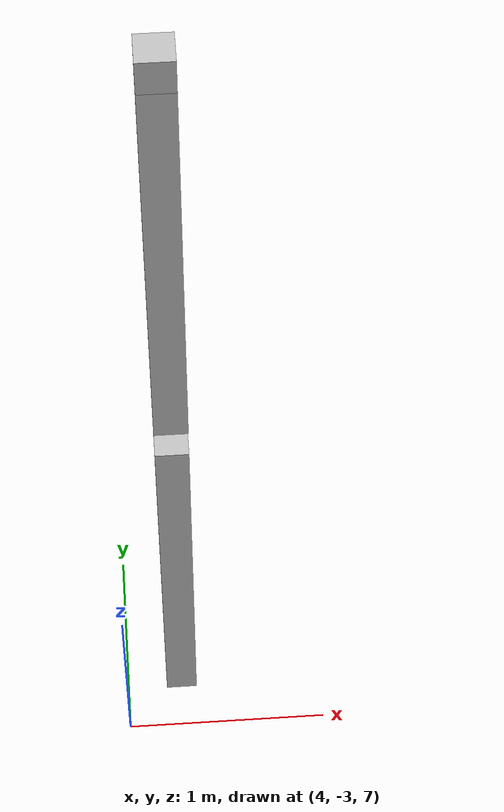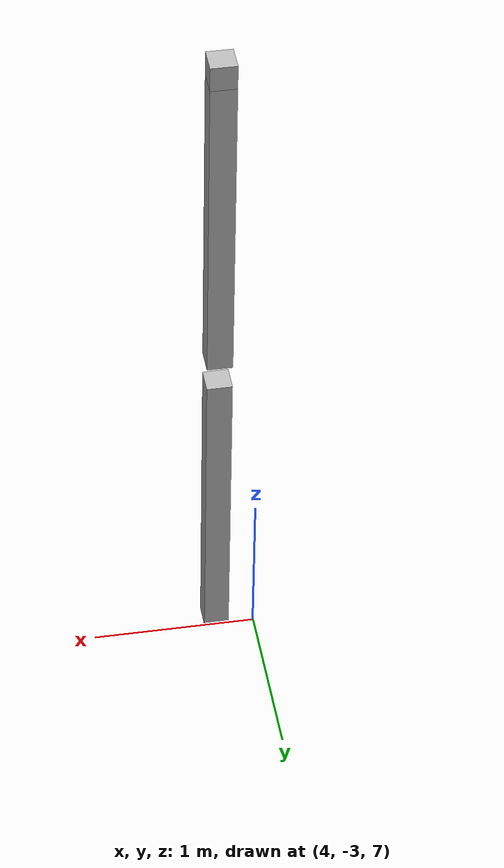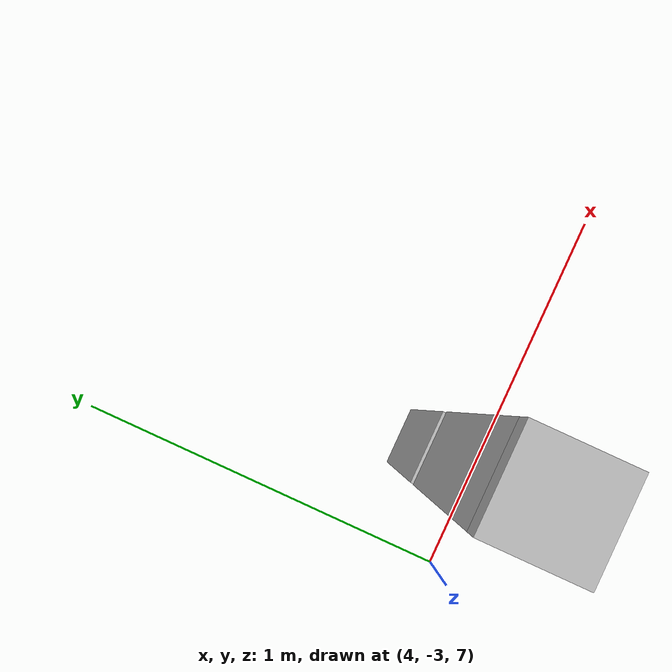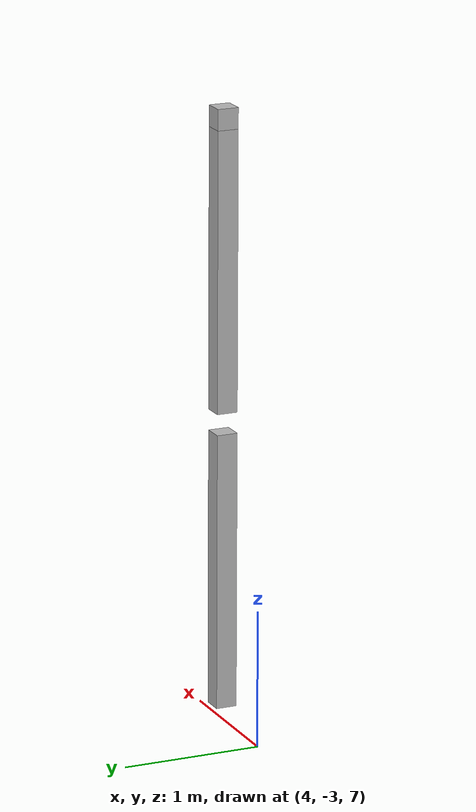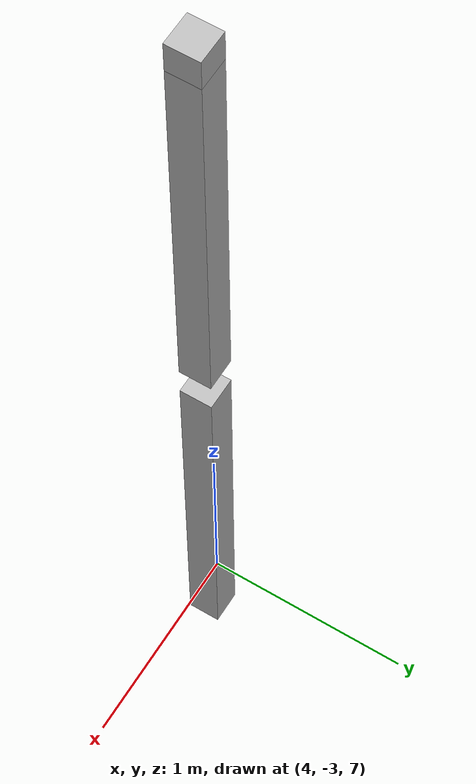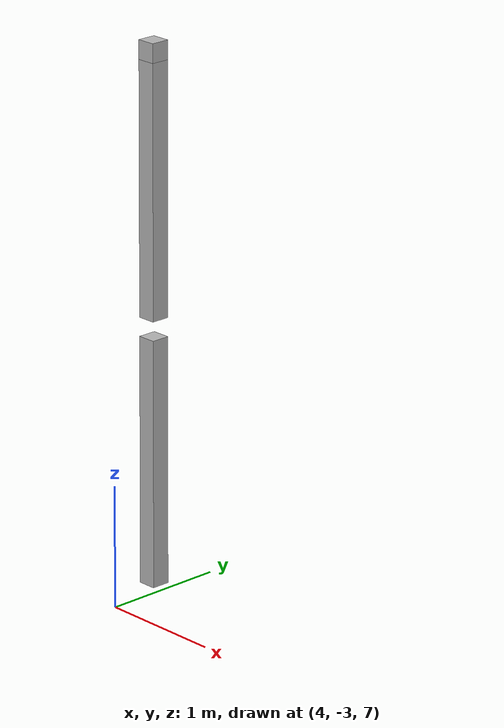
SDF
<sdf version="1.7">
 <world name="default">
  <model name="orthogonal_747_2.000.15_TS">
   <static>1</static>
   <link name="z_link_5_1_5">
    <inertial>
     <mass>1</mass>
     <inertia>
      <ixx>0.166667</ixx>
      <ixy>0</ixy>
      <ixz>0</ixz>
      <iyy>0.166667</iyy>
      <iyz>0</iyz>
      <izz>0.166667</izz>
     </inertia>
    </inertial>
    <pose>10.75 2.15 10.75 0 -0 0</pose>
    <visual name="visual_0">
     <laser_retro>4705</laser_retro>
     <geometry><box><size>0.15 1e-06 2</size></box></geometry>
     <material>
      <script><name>Gazebo/Grey</name><uri>file://media/materials/scripts/gazebo.material</uri></script>
      <shader type="pixel"><normal_map>__default__</normal_map></shader>
      <ambient>0.678 0.498 0.659 1</ambient>
      <diffuse>0.7 0.7 0.7 1</diffuse>
      <specular>0.01 0.01 0.01 1</specular>
      <emissive>0 0 0 1</emissive>
     </material>
     <pose>0 -0.075 0 0 -0 0</pose>
     <transparency>1</transparency>
    </visual>
    <visual name="visual_1">
     <laser_retro>4706</laser_retro>
     <geometry><box><size>0.15 1e-06 2</size></box></geometry>
     <material>
      <script><name>Gazebo/Grey</name><uri>file://media/materials/scripts/gazebo.material</uri></script>
      <shader type="pixel"><normal_map>__default__</normal_map></shader>
      <ambient>0.447 0.624 0.812 1</ambient>
      <diffuse>0.7 0.7 0.7 1</diffuse>
      <specular>0.01 0.01 0.01 1</specular>
      <emissive>0 0 0 1</emissive>
     </material>
     <pose>0 0.075 0 0 -0 0</pose>
     <transparency>1</transparency>
    </visual>
    <visual name="visual_2">
     <laser_retro>4707</laser_retro>
     <geometry><box><size>0.15 0.15 1e-06</size></box></geometry>
     <material>
      <script><name>Gazebo/Grey</name><uri>file://media/materials/scripts/gazebo.material</uri></script>
      <shader type="pixel"><normal_map>__default__</normal_map></shader>
      <ambient>0.988 0.686 0.243 1</ambient>
      <diffuse>0.7 0.7 0.7 1</diffuse>
      <specular>0.01 0.01 0.01 1</specular>
      <emissive>0 0 0 1</emissive>
     </material>
     <pose>0 0 -1 0 -0 0</pose>
     <transparency>1</transparency>
    </visual>
    <visual name="visual_3">
     <laser_retro>4708</laser_retro>
     <geometry><box><size>1e-06 0.15 2</size></box></geometry>
     <material>
      <script><name>Gazebo/Grey</name><uri>file://media/materials/scripts/gazebo.material</uri></script>
      <shader type="pixel"><normal_map>__default__</normal_map></shader>
      <ambient>0.988 0.914 0.31 1</ambient>
      <diffuse>0.7 0.7 0.7 1</diffuse>
      <specular>0.01 0.01 0.01 1</specular>
      <emissive>0 0 0 1</emissive>
     </material>
     <pose>0.075 0 0 0 -0 0</pose>
     <transparency>1</transparency>
    </visual>
    <visual name="visual_4">
     <laser_retro>4709</laser_retro>
     <geometry><box><size>0.15 0.15 1e-06</size></box></geometry>
     <material>
      <script><name>Gazebo/Grey</name><uri>file://media/materials/scripts/gazebo.material</uri></script>
      <shader type="pixel"><normal_map>__default__</normal_map></shader>
      <ambient>0.937 0.161 0.161 1</ambient>
      <diffuse>0.7 0.7 0.7 1</diffuse>
      <specular>0.01 0.01 0.01 1</specular>
      <emissive>0 0 0 1</emissive>
     </material>
     <pose>0 0 1 0 -0 0</pose>
     <transparency>1</transparency>
    </visual>
    <visual name="visual_5">
     <laser_retro>4710</laser_retro>
     <geometry><box><size>1e-06 0.15 2</size></box></geometry>
     <material>
      <script><name>Gazebo/Grey</name><uri>file://media/materials/scripts/gazebo.material</uri></script>
      <shader type="pixel"><normal_map>__default__</normal_map></shader>
      <ambient>0.541 0.886 0.204 1</ambient>
      <diffuse>0.7 0.7 0.7 1</diffuse>
      <specular>0.01 0.01 0.01 1</specular>
      <emissive>0 0 0 1</emissive>
     </material>
     <pose>-0.075 0 0 0 -0 0</pose>
     <transparency>1</transparency>
    </visual>
    <visual name="visual_texture">
     <geometry><box><size>0.149985 0.149985 1.9998</size></box></geometry>
     <material>
      <script>
       <uri>model://BASE_MODELS/simple_block_v2_textured/materials/scripts</uri>
       <uri>model://BASE_MODELS/simple_block_v2_textured/materials/textures</uri>
       <name>metal</name>
      </script>
     </material>
     <laser_retro>4711</laser_retro>
    </visual>
    <collision name="collision">
     <geometry><box><size>0.15 0.15 2</size></box></geometry>
     <surface>
      <friction>
       <ode><mu>1</mu><mu2>1</mu2><fdir1>0 0 0</fdir1><slip1>0</slip1><slip2>0</slip2></ode>
       <torsional>
        <coefficient>1</coefficient>
        <patch_radius>0</patch_radius>
        <surface_radius>0</surface_radius>
        <use_patch_radius>1</use_patch_radius>
        <ode><slip>0</slip></ode>
       </torsional>
      </friction>
      <bounce><restitution_coefficient>0</restitution_coefficient><threshold>1e+06</threshold></bounce>
      <contact>
       <collide_without_contact>0</collide_without_contact>
       <collide_without_contact_bitmask>1</collide_without_contact_bitmask>
       <collide_bitmask>1</collide_bitmask>
       <ode>
        <soft_cfm>0</soft_cfm>
        <soft_erp>0.2</soft_erp>
        <kp>1e+13</kp>
        <kd>1</kd>
        <max_vel>0.01</max_vel>
        <min_depth>0</min_depth>
       </ode>
       <bullet>
        <split_impulse>1</split_impulse>
        <split_impulse_penetration_threshold>-0.01</split_impulse_penetration_threshold>
        <soft_cfm>0</soft_cfm>
        <soft_erp>0.2</soft_erp>
        <kp>1e+13</kp>
        <kd>1</kd>
       </bullet>
      </contact>
     </surface>
    </collision>
   </link>
   <link name="u_link_6_1_5">
    <inertial>
     <mass>1</mass>
     <inertia>
      <ixx>0.166667</ixx>
      <ixy>0</ixy>
      <ixz>0</ixz>
      <iyy>0.166667</iyy>
      <iyz>0</iyz>
      <izz>0.166667</izz>
     </inertia>
    </inertial>
    <pose>10.75 2.15 13.975 0 -0 0</pose>
    <visual name="visual_0">
     <laser_retro>5636</laser_retro>
     <geometry><box><size>0.15 1e-06 0.15</size></box></geometry>
     <material>
      <script><name>Gazebo/Grey</name><uri>file://media/materials/scripts/gazebo.material</uri></script>
      <shader type="pixel"><normal_map>__default__</normal_map></shader>
      <ambient>0.678 0.498 0.659 1</ambient>
      <diffuse>0.7 0.7 0.7 1</diffuse>
      <specular>0.01 0.01 0.01 1</specular>
      <emissive>0 0 0 1</emissive>
     </material>
     <pose>0 -0.075 0 0 -0 0</pose>
     <transparency>1</transparency>
    </visual>
    <visual name="visual_1">
     <laser_retro>5637</laser_retro>
     <geometry><box><size>0.15 1e-06 0.15</size></box></geometry>
     <material>
      <script><name>Gazebo/Grey</name><uri>file://media/materials/scripts/gazebo.material</uri></script>
      <shader type="pixel"><normal_map>__default__</normal_map></shader>
      <ambient>0.447 0.624 0.812 1</ambient>
      <diffuse>0.7 0.7 0.7 1</diffuse>
      <specular>0.01 0.01 0.01 1</specular>
      <emissive>0 0 0 1</emissive>
     </material>
     <pose>0 0.075 0 0 -0 0</pose>
     <transparency>1</transparency>
    </visual>
    <visual name="visual_2">
     <laser_retro>5638</laser_retro>
     <geometry><box><size>0.15 0.15 1e-06</size></box></geometry>
     <material>
      <script><name>Gazebo/Grey</name><uri>file://media/materials/scripts/gazebo.material</uri></script>
      <shader type="pixel"><normal_map>__default__</normal_map></shader>
      <ambient>0.988 0.686 0.243 1</ambient>
      <diffuse>0.7 0.7 0.7 1</diffuse>
      <specular>0.01 0.01 0.01 1</specular>
      <emissive>0 0 0 1</emissive>
     </material>
     <pose>0 0 -0.075 0 -0 0</pose>
     <transparency>1</transparency>
    </visual>
    <visual name="visual_3">
     <laser_retro>5639</laser_retro>
     <geometry><box><size>1e-06 0.15 0.15</size></box></geometry>
     <material>
      <script><name>Gazebo/Grey</name><uri>file://media/materials/scripts/gazebo.material</uri></script>
      <shader type="pixel"><normal_map>__default__</normal_map></shader>
      <ambient>0.988 0.914 0.31 1</ambient>
      <diffuse>0.7 0.7 0.7 1</diffuse>
      <specular>0.01 0.01 0.01 1</specular>
      <emissive>0 0 0 1</emissive>
     </material>
     <pose>0.075 0 0 0 -0 0</pose>
     <transparency>1</transparency>
    </visual>
    <visual name="visual_4">
     <laser_retro>5640</laser_retro>
     <geometry><box><size>0.15 0.15 1e-06</size></box></geometry>
     <material>
      <script><name>Gazebo/Grey</name><uri>file://media/materials/scripts/gazebo.material</uri></script>
      <shader type="pixel"><normal_map>__default__</normal_map></shader>
      <ambient>0.937 0.161 0.161 1</ambient>
      <diffuse>0.7 0.7 0.7 1</diffuse>
      <specular>0.01 0.01 0.01 1</specular>
      <emissive>0 0 0 1</emissive>
     </material>
     <pose>0 0 0.075 0 -0 0</pose>
     <transparency>1</transparency>
    </visual>
    <visual name="visual_5">
     <laser_retro>5641</laser_retro>
     <geometry><box><size>1e-06 0.15 0.15</size></box></geometry>
     <material>
      <script><name>Gazebo/Grey</name><uri>file://media/materials/scripts/gazebo.material</uri></script>
      <shader type="pixel"><normal_map>__default__</normal_map></shader>
      <ambient>0.541 0.886 0.204 1</ambient>
      <diffuse>0.7 0.7 0.7 1</diffuse>
      <specular>0.01 0.01 0.01 1</specular>
      <emissive>0 0 0 1</emissive>
     </material>
     <pose>-0.075 0 0 0 -0 0</pose>
     <transparency>1</transparency>
    </visual>
    <visual name="visual_texture">
     <geometry><box><size>0.149985 0.149985 0.149985</size></box></geometry>
     <material>
      <script>
       <uri>model://BASE_MODELS/simple_block_v2_textured/materials/scripts</uri>
       <uri>model://BASE_MODELS/simple_block_v2_textured/materials/textures</uri>
       <name>metal</name>
      </script>
     </material>
     <laser_retro>5642</laser_retro>
    </visual>
    <collision name="collision">
     <geometry><box><size>0.15 0.15 0.15</size></box></geometry>
     <surface>
      <friction>
       <ode><mu>1</mu><mu2>1</mu2><fdir1>0 0 0</fdir1><slip1>0</slip1><slip2>0</slip2></ode>
       <torsional>
        <coefficient>1</coefficient>
        <patch_radius>0</patch_radius>
        <surface_radius>0</surface_radius>
        <use_patch_radius>1</use_patch_radius>
        <ode><slip>0</slip></ode>
       </torsional>
      </friction>
      <bounce><restitution_coefficient>0</restitution_coefficient><threshold>1e+06</threshold></bounce>
      <contact>
       <collide_without_contact>0</collide_without_contact>
       <collide_without_contact_bitmask>1</collide_without_contact_bitmask>
       <collide_bitmask>1</collide_bitmask>
       <ode>
        <soft_cfm>0</soft_cfm>
        <soft_erp>0.2</soft_erp>
        <kp>1e+13</kp>
        <kd>1</kd>
        <max_vel>0.01</max_vel>
        <min_depth>0</min_depth>
       </ode>
       <bullet>
        <split_impulse>1</split_impulse>
        <split_impulse_penetration_threshold>-0.01</split_impulse_penetration_threshold>
        <soft_cfm>0</soft_cfm>
        <soft_erp>0.2</soft_erp>
        <kp>1e+13</kp>
        <kd>1</kd>
       </bullet>
      </contact>
     </surface>
    </collision>
   </link>
   <link name="z_link_6_1_5">
    <inertial>
     <mass>1</mass>
     <inertia>
      <ixx>0.166667</ixx>
      <ixy>0</ixy>
      <ixz>0</ixz>
      <iyy>0.166667</iyy>
      <iyz>0</iyz>
      <izz>0.166667</izz>
     </inertia>
    </inertial>
    <pose>10.75 2.15 12.9 0 -0 0</pose>
    <visual name="visual_0">
     <laser_retro>5643</laser_retro>
     <geometry><box><size>0.15 1e-06 2</size></box></geometry>
     <material>
      <script><name>Gazebo/Grey</name><uri>file://media/materials/scripts/gazebo.material</uri></script>
      <shader type="pixel"><normal_map>__default__</normal_map></shader>
      <ambient>0.678 0.498 0.659 1</ambient>
      <diffuse>0.7 0.7 0.7 1</diffuse>
      <specular>0.01 0.01 0.01 1</specular>
      <emissive>0 0 0 1</emissive>
     </material>
     <pose>0 -0.075 0 0 -0 0</pose>
     <transparency>1</transparency>
    </visual>
    <visual name="visual_1">
     <laser_retro>5644</laser_retro>
     <geometry><box><size>0.15 1e-06 2</size></box></geometry>
     <material>
      <script><name>Gazebo/Grey</name><uri>file://media/materials/scripts/gazebo.material</uri></script>
      <shader type="pixel"><normal_map>__default__</normal_map></shader>
      <ambient>0.447 0.624 0.812 1</ambient>
      <diffuse>0.7 0.7 0.7 1</diffuse>
      <specular>0.01 0.01 0.01 1</specular>
      <emissive>0 0 0 1</emissive>
     </material>
     <pose>0 0.075 0 0 -0 0</pose>
     <transparency>1</transparency>
    </visual>
    <visual name="visual_2">
     <laser_retro>5645</laser_retro>
     <geometry><box><size>0.15 0.15 1e-06</size></box></geometry>
     <material>
      <script><name>Gazebo/Grey</name><uri>file://media/materials/scripts/gazebo.material</uri></script>
      <shader type="pixel"><normal_map>__default__</normal_map></shader>
      <ambient>0.988 0.686 0.243 1</ambient>
      <diffuse>0.7 0.7 0.7 1</diffuse>
      <specular>0.01 0.01 0.01 1</specular>
      <emissive>0 0 0 1</emissive>
     </material>
     <pose>0 0 -1 0 -0 0</pose>
     <transparency>1</transparency>
    </visual>
    <visual name="visual_3">
     <laser_retro>5646</laser_retro>
     <geometry><box><size>1e-06 0.15 2</size></box></geometry>
     <material>
      <script><name>Gazebo/Grey</name><uri>file://media/materials/scripts/gazebo.material</uri></script>
      <shader type="pixel"><normal_map>__default__</normal_map></shader>
      <ambient>0.988 0.914 0.31 1</ambient>
      <diffuse>0.7 0.7 0.7 1</diffuse>
      <specular>0.01 0.01 0.01 1</specular>
      <emissive>0 0 0 1</emissive>
     </material>
     <pose>0.075 0 0 0 -0 0</pose>
     <transparency>1</transparency>
    </visual>
    <visual name="visual_4">
     <laser_retro>5647</laser_retro>
     <geometry><box><size>0.15 0.15 1e-06</size></box></geometry>
     <material>
      <script><name>Gazebo/Grey</name><uri>file://media/materials/scripts/gazebo.material</uri></script>
      <shader type="pixel"><normal_map>__default__</normal_map></shader>
      <ambient>0.937 0.161 0.161 1</ambient>
      <diffuse>0.7 0.7 0.7 1</diffuse>
      <specular>0.01 0.01 0.01 1</specular>
      <emissive>0 0 0 1</emissive>
     </material>
     <pose>0 0 1 0 -0 0</pose>
     <transparency>1</transparency>
    </visual>
    <visual name="visual_5">
     <laser_retro>5648</laser_retro>
     <geometry><box><size>1e-06 0.15 2</size></box></geometry>
     <material>
      <script><name>Gazebo/Grey</name><uri>file://media/materials/scripts/gazebo.material</uri></script>
      <shader type="pixel"><normal_map>__default__</normal_map></shader>
      <ambient>0.541 0.886 0.204 1</ambient>
      <diffuse>0.7 0.7 0.7 1</diffuse>
      <specular>0.01 0.01 0.01 1</specular>
      <emissive>0 0 0 1</emissive>
     </material>
     <pose>-0.075 0 0 0 -0 0</pose>
     <transparency>1</transparency>
    </visual>
    <visual name="visual_texture">
     <geometry><box><size>0.149985 0.149985 1.9998</size></box></geometry>
     <material>
      <script>
       <uri>model://BASE_MODELS/simple_block_v2_textured/materials/scripts</uri>
       <uri>model://BASE_MODELS/simple_block_v2_textured/materials/textures</uri>
       <name>metal</name>
      </script>
     </material>
     <laser_retro>5649</laser_retro>
    </visual>
    <collision name="collision">
     <geometry><box><size>0.15 0.15 2</size></box></geometry>
     <surface>
      <friction>
       <ode><mu>1</mu><mu2>1</mu2><fdir1>0 0 0</fdir1><slip1>0</slip1><slip2>0</slip2></ode>
       <torsional>
        <coefficient>1</coefficient>
        <patch_radius>0</patch_radius>
        <surface_radius>0</surface_radius>
        <use_patch_radius>1</use_patch_radius>
        <ode><slip>0</slip></ode>
       </torsional>
      </friction>
      <bounce><restitution_coefficient>0</restitution_coefficient><threshold>1e+06</threshold></bounce>
      <contact>
       <collide_without_contact>0</collide_without_contact>
       <collide_without_contact_bitmask>1</collide_without_contact_bitmask>
       <collide_bitmask>1</collide_bitmask>
       <ode>
        <soft_cfm>0</soft_cfm>
        <soft_erp>0.2</soft_erp>
        <kp>1e+13</kp>
        <kd>1</kd>
        <max_vel>0.01</max_vel>
        <min_depth>0</min_depth>
       </ode>
       <bullet>
        <split_impulse>1</split_impulse>
        <split_impulse_penetration_threshold>-0.01</split_impulse_penetration_threshold>
        <soft_cfm>0</soft_cfm>
        <soft_erp>0.2</soft_erp>
        <kp>1e+13</kp>
        <kd>1</kd>
       </bullet>
      </contact>
     </surface>
    </collision>
   </link>
   <pose>-6.47624 -5 -2.5 0 -0 0</pose>
  </model>
 </world>
</sdf>
